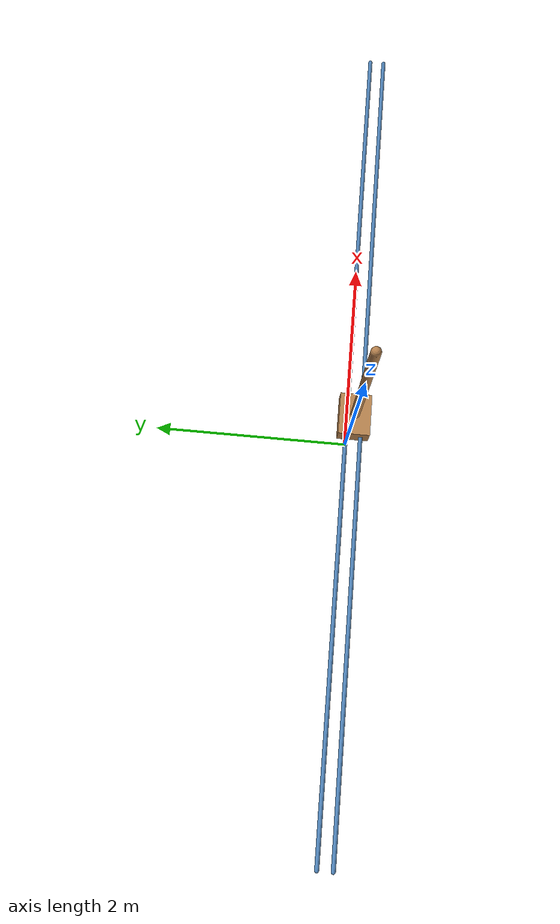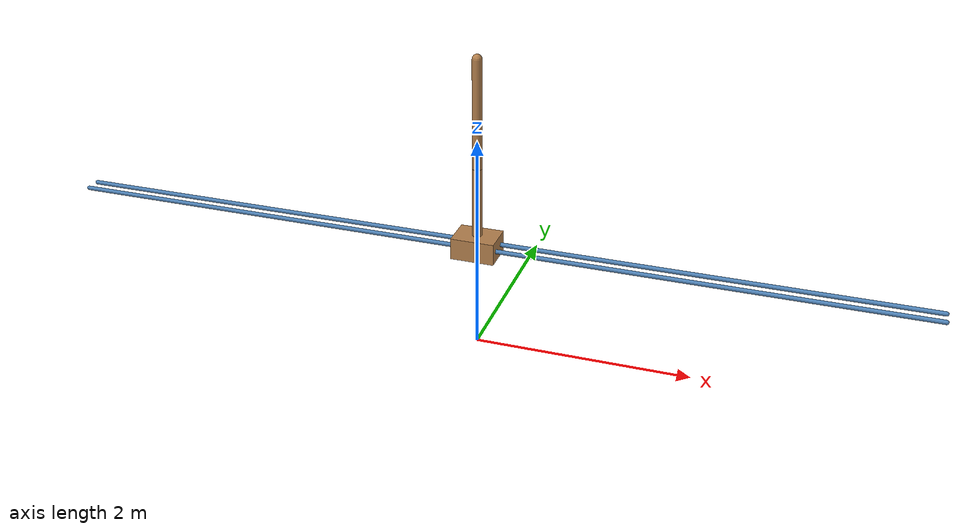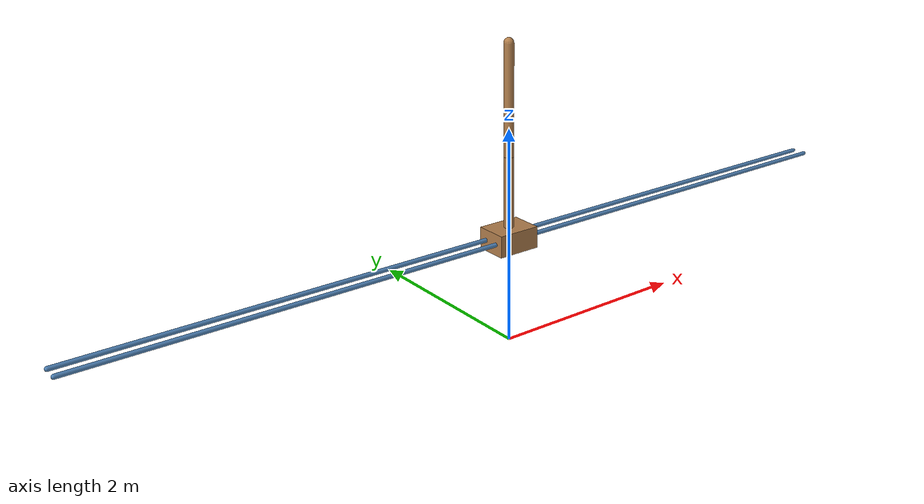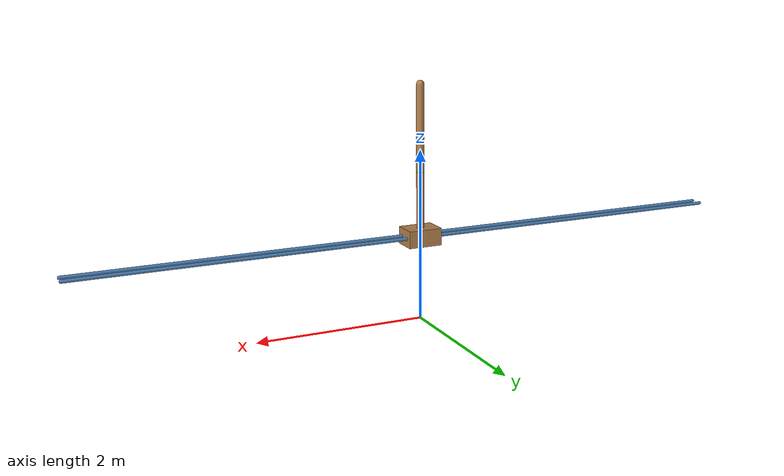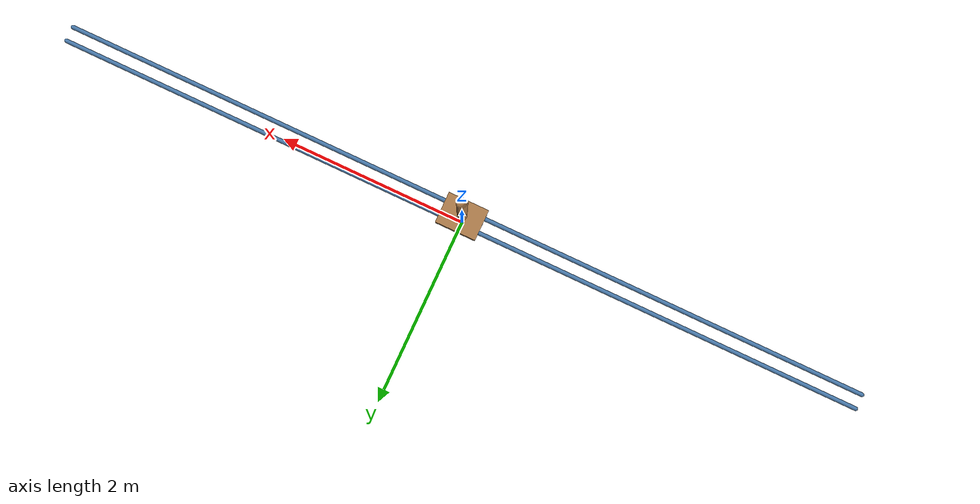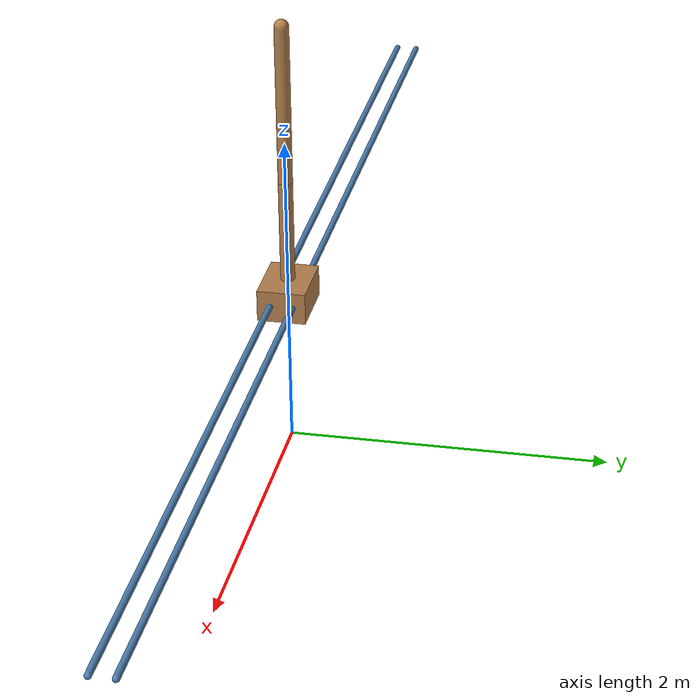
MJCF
<mujoco model="cartpole">

    <visual>
        <headlight ambient=".4 .4 .4" diffuse=".8 .8 .8" specular="0.1 0.1 0.1"/>
        <map znear=".01"/>
        <quality shadowsize="2048"/>
    </visual>

    <asset>
        <texture name="skybox" type="skybox" builtin="gradient" rgb1=".4 .6 .8" rgb2="0 0 0"
                 width="800" height="800" mark="random" markrgb="1 1 1"/>
    </asset>

    <asset>
        <texture name="grid" type="2d" builtin="checker" rgb1=".1 .2 .3" rgb2=".2 .3 .4" width="300" height="300" mark="edge" markrgb=".2 .3 .4"/>
        <material name="grid" texture="grid" texrepeat="1 1" texuniform="true" reflectance=".2"/>
        <material name="self" rgba=".7 .5 .3 1"/>
        <material name="self_default" rgba=".7 .5 .3 1"/>
        <material name="self_highlight" rgba="0 .5 .3 1"/>
        <material name="effector" rgba=".7 .4 .2 1"/>
        <material name="effector_default" rgba=".7 .4 .2 1"/>
        <material name="effector_highlight" rgba="0 .5 .3 1"/>
        <material name="decoration" rgba=".3 .5 .7 1"/>
        <material name="eye" rgba="0 .2 1 1"/>
        <material name="target" rgba=".6 .3 .3 1"/>
        <material name="target_default" rgba=".6 .3 .3 1"/>
        <material name="target_highlight" rgba=".6 .3 .3 .4"/>
    </asset>
    <option timestep="0.01" integrator="RK4">
        <flag contact="disable" energy="enable"/>
    </option>

    <default>
        <default class="pole">
            <joint type="hinge" axis="0 1 0"  damping="2e-4"/>
            <geom type="capsule" fromto="0 0 0 0 0 1" size="0.045" material="self" mass=".1"/>
        </default>
    </default>

    <worldbody>
        <light name="light" pos="0 0 6"/>
        <camera name="fixed" pos="0 -4 1" zaxis="0 -1 0"/>
        <camera name="lookatcart" mode="targetbody" target="cart" pos="0 -2 2"/>
        <geom name="rail1" type="capsule" pos="0  .07 1" zaxis="1 0 0" size="0.02 4" material="decoration" />
        <geom name="rail2" type="capsule" pos="0 -.07 1" zaxis="1 0 0" size="0.02 4" material="decoration" />
        <body name="cart" pos="0 0 1">
            <joint name="slider" type="slide" limited="false" axis="1 0 0" range="-1.8 1.8" solreflimit=".08 1" damping="5e-4"/>
            <geom name="cart" type="box" size="0.2 0.15 0.1" material="self"  mass="1"/>
            <body name="pole_1" pos="0 0 0" childclass="pole">
                <joint type="hinge" axis="0 1 0"  damping="2e-4"/>
                <geom type="capsule" fromto="0 0 0 0 0 0.75" size="0.045" material="self" mass=".1"/>
                <body name="pole_2" pos="0 0 0.75" childclass="pole">
                    <joint type="hinge" axis="0 1 0"  damping="2e-3" ref="3.14"/>
                    <geom type="capsule" fromto="0 0 0 0 0 1" size="0.045" material="self" mass=".1"/>
                </body>
            </body>
        </body>
    </worldbody>

    <actuator>
        <motor name="slide" joint="slider" gear="10" ctrllimited="true" ctrlrange="-1.5 1.5" />
    </actuator>

</mujoco>
